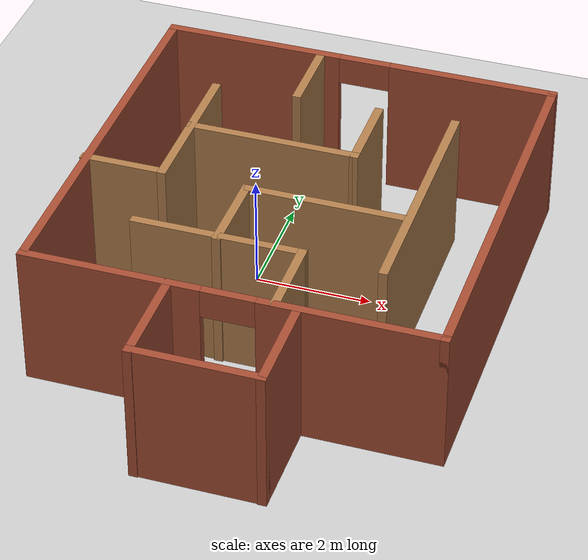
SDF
<?xml version="1.0"?>
<sdf version="1.7">
  <world name="default">
    <!-- 최소 환경 -->
    <include><uri>model://sun</uri></include>
    <include><uri>model://ground_plane</uri></include>

    <gravity>0 0 -9.8</gravity>
    <physics type="ode">
      <max_step_size>0.001</max_step_size>
      <real_time_update_rate>1000</real_time_update_rate>
      <real_time_factor>1</real_time_factor>
    </physics>

    <!-- === 미로(벽만 유지) === -->
    <model name="maze">
      <pose>0.743923 -0.894776 0 0 0 0</pose>
      <static>1</static>

      <link name="Wall_0">
        <pose>-3.40979 0.847721 0 0 0 -1.5708</pose>
        <collision name="Wall_0_Collision">
          <pose>0 0 1.25 0 0 0</pose>
          <geometry><box><size>7 0.15 2.5</size></box></geometry>
        </collision>
        <visual name="Wall_0_Visual">
          <pose>0 0 1.25 0 0 0</pose>
          <geometry><box><size>7 0.15 2.5</size></box></geometry>
          <material><script>
            <uri>file://media/materials/scripts/gazebo.material</uri>
            <name>Gazebo/Bricks</name>
          </script></material>
        </visual>
      </link>

      <link name="Wall_1">
        <pose>0.015208 -2.57728 0 0 0 0</pose>
        <visual name="Wall_1_Visual_0">
          <pose>-1.98478 0 1.25 0 0 0</pose>
          <geometry><box><size>3.03043 0.15 2.5</size></box></geometry>
          <material><script><uri>file://media/materials/scripts/gazebo.material</uri><name>Gazebo/Bricks</name></script></material>
        </visual>
        <collision name="Wall_1_Collision_0">
          <pose>-1.98478 0 1.25 0 0 0</pose>
          <geometry><box><size>3.03043 0.15 2.5</size></box></geometry>
        </collision>
        <visual name="Wall_1_Visual_1">
          <pose>1.96522 0 1.25 0 0 0</pose>
          <geometry><box><size>3.06957 0.15 2.5</size></box></geometry>
          <material><script><uri>file://media/materials/scripts/gazebo.material</uri><name>Gazebo/Bricks</name></script></material>
        </visual>
        <collision name="Wall_1_Collision_1">
          <pose>1.96522 0 1.25 0 0 0</pose>
          <geometry><box><size>3.06957 0.15 2.5</size></box></geometry>
        </collision>
        <visual name="Wall_1_Visual_2">
          <pose>-0.019566 0 2.25 0 0 0</pose>
          <geometry><box><size>0.9 0.15 0.5</size></box></geometry>
          <material><script><uri>file://media/materials/scripts/gazebo.material</uri><name>Gazebo/Bricks</name></script></material>
        </visual>
        <collision name="Wall_1_Collision_2">
          <pose>-0.019566 0 2.25 0 0 0</pose>
          <geometry><box><size>0.9 0.15 0.5</size></box></geometry>
        </collision>
      </link>

      <link name="Wall_12">
        <pose>-0.676421 3.58967 0 0 0 -1.5708</pose>
        <collision name="Wall_12_Collision">
          <pose>0 0 1.25 0 0 0</pose>
          <geometry><box><size>1.5 0.15 2.5</size></box></geometry>
        </collision>
        <visual name="Wall_12_Visual">
          <pose>0 0 1.25 0 0 0</pose>
          <geometry><box><size>1.5 0.15 2.5</size></box></geometry>
          <material><script><uri>file://media/materials/scripts/gazebo.material</uri><name>Gazebo/Wood</name></script></material>
        </visual>
      </link>

      <link name="Wall_14">
        <pose>0.740274 -1.89894 0 0 0 1.5708</pose>
        <collision name="Wall_14_Collision">
          <pose>0 0 1.25 0 0 0</pose>
          <geometry><box><size>1.5 0.15 2.5</size></box></geometry>
        </collision>
        <visual name="Wall_14_Visual">
          <pose>0 0 1.25 0 0 0</pose>
          <geometry><box><size>1.5 0.15 2.5</size></box></geometry>
          <material><script><uri>file://media/materials/scripts/gazebo.material</uri><name>Gazebo/Wood</name></script></material>
        </visual>
      </link>

      <link name="Wall_15">
        <pose>-0.650186 -1.22557 0 0 0 -3.14042</pose>
        <collision name="Wall_15_Collision">
          <pose>0 0 1.25 0 0 0</pose>
          <geometry><box><size>2.93092 0.15 2.5</size></box></geometry>
        </collision>
        <visual name="Wall_15_Visual">
          <pose>0 0 1.25 0 0 0</pose>
          <geometry><box><size>2.93092 0.15 2.5</size></box></geometry>
          <material><script><uri>file://media/materials/scripts/gazebo.material</uri><name>Gazebo/Wood</name></script></material>
        </visual>
      </link>

      <link name="Wall_17">
        <pose>-0.64577 -0.569597 0 0 0 1.56118</pose>
        <collision name="Wall_17_Collision">
          <pose>0 0 1.25 0 0 0</pose>
          <geometry><box><size>1.52546 0.15 2.5</size></box></geometry>
        </collision>
        <visual name="Wall_17_Visual">
          <pose>0 0 1.25 0 0 0</pose>
          <geometry><box><size>1.52546 0.15 2.5</size></box></geometry>
          <material><script><uri>file://media/materials/scripts/gazebo.material</uri><name>Gazebo/Wood</name></script></material>
        </visual>
      </link>

      <link name="Wall_18">
        <pose>0.723017 0.118103 0 0 0 0</pose>
        <collision name="Wall_18_Collision">
          <pose>0 0 1.25 0 0 0</pose>
          <geometry><box><size>2.87435 0.15 2.5</size></box></geometry>
        </collision>
        <visual name="Wall_18_Visual">
          <pose>0 0 1.25 0 0 0</pose>
          <geometry><box><size>2.87435 0.15 2.5</size></box></geometry>
          <material><script><uri>file://media/materials/scripts/gazebo.material</uri><name>Gazebo/Wood</name></script></material>
        </visual>
      </link>

      <link name="Wall_2">
        <pose>3.44021 0.847721 0 0 0 1.5708</pose>
        <collision name="Wall_2_Collision">
          <pose>0 0 1.25 0 0 0</pose>
          <geometry><box><size>7 0.15 2.5</size></box></geometry>
        </collision>
        <visual name="Wall_2_Visual">
          <pose>0 0 1.25 0 0 0</pose>
          <geometry><box><size>7 0.15 2.5</size></box></geometry>
          <material><script><uri>file://media/materials/scripts/gazebo.material</uri><name>Gazebo/Bricks</name></script></material>
        </visual>
      </link>

      <link name="Wall_20">
        <pose>2.0918 0.812416 0 0 0 -1.56766</pose>
        <collision name="Wall_20_Collision">
          <pose>0 0 1.25 0 0 0</pose>
          <geometry><box><size>4.3688 0.15 2.5</size></box></geometry>
        </collision>
        <visual name="Wall_20_Visual">
          <pose>0 0 1.25 0 0 0</pose>
          <geometry><box><size>4.3688 0.15 2.5</size></box></geometry>
          <material><script><uri>file://media/materials/scripts/gazebo.material</uri><name>Gazebo/Wood</name></script></material>
        </visual>
      </link>

      <link name="Wall_22">
        <pose>-0.988717 -3.43376 0 0 0 -1.5708</pose>
        <collision name="Wall_22_Collision">
          <pose>0 0 1.25 0 0 0</pose>
          <geometry><box><size>1.82793 0.15 2.5</size></box></geometry>
        </collision>
        <visual name="Wall_22_Visual">
          <pose>0 0 1.25 0 0 0</pose>
          <geometry><box><size>1.82793 0.15 2.5</size></box></geometry>
          <material><script><uri>file://media/materials/scripts/gazebo.material</uri><name>Gazebo/Bricks</name></script></material>
        </visual>
      </link>

      <link name="Wall_23">
        <pose>0.061283 -4.25751 0 0 0 0</pose>
        <collision name="Wall_23_Collision">
          <pose>0 0 1.25 0 0 0</pose>
          <geometry><box><size>2.25 0.15 2.5</size></box></geometry>
        </collision>
        <visual name="Wall_23_Visual">
          <pose>0 0 1.25 0 0 0</pose>
          <geometry><box><size>2.25 0.15 2.5</size></box></geometry>
          <material><script><uri>file://media/materials/scripts/gazebo.material</uri><name>Gazebo/Bricks</name></script></material>
        </visual>
      </link>

      <link name="Wall_24">
        <pose>1.11128 -3.43376 0 0 0 1.5708</pose>
        <collision name="Wall_24_Collision">
          <pose>0 0 1.25 0 0 0</pose>
          <geometry><box><size>1.82793 0.15 2.5</size></box></geometry>
        </collision>
        <visual name="Wall_24_Visual">
          <pose>0 0 1.25 0 0 0</pose>
          <geometry><box><size>1.82793 0.15 2.5</size></box></geometry>
          <material><script><uri>file://media/materials/scripts/gazebo.material</uri><name>Gazebo/Bricks</name></script></material>
        </visual>
      </link>

      <link name="Wall_3">
        <pose>0.015208 4.27272 0 0 0 3.14159</pose>
        <visual name="Wall_3_Visual_0">
          <pose>-2.02473 0 1.25 0 0 0</pose>
          <geometry><box><size>2.95054 0.15 2.5</size></box></geometry>
          <material><script><uri>file://media/materials/scripts/gazebo.material</uri><name>Gazebo/Bricks</name></script></material>
        </visual>
        <collision name="Wall_3_Collision_0">
          <pose>-2.02473 0 1.25 0 0 0</pose>
          <geometry><box><size>2.95054 0.15 2.5</size></box></geometry>
        </collision>
        <visual name="Wall_3_Visual_1">
          <pose>1.92527 0 1.25 0 0 0</pose>
          <geometry><box><size>3.14946 0.15 2.5</size></box></geometry>
          <material><script><uri>file://media/materials/scripts/gazebo.material</uri><name>Gazebo/Bricks</name></script></material>
        </visual>
        <collision name="Wall_3_Collision_1">
          <pose>1.92527 0 1.25 0 0 0</pose>
          <geometry><box><size>3.14946 0.15 2.5</size></box></geometry>
        </collision>
        <visual name="Wall_3_Visual_2">
          <pose>-0.099459 0 2.25 0 0 0</pose>
          <geometry><box><size>0.9 0.15 0.5</size></box></geometry>
          <material><script><uri>file://media/materials/scripts/gazebo.material</uri><name>Gazebo/Bricks</name></script></material>
        </visual>
        <collision name="Wall_3_Collision_2">
          <pose>-0.099459 0 2.25 0 0 0</pose>
          <geometry><box><size>0.9 0.15 0.5</size></box></geometry>
        </collision>
      </link>

      <link name="Wall_5">
        <pose>-2.76521 0.135941 0 0 0 0</pose>
        <collision name="Wall_5_Collision">
          <pose>0 0 1.25 0 0 0</pose>
          <geometry><box><size>1.5 0.15 2.5</size></box></geometry>
        </collision>
        <visual name="Wall_5_Visual">
          <pose>0 0 1.25 0 0 0</pose>
          <geometry><box><size>1.5 0.15 2.5</size></box></geometry>
          <material><script><uri>file://media/materials/scripts/gazebo.material</uri><name>Gazebo/Wood</name></script></material>
        </visual>
      </link>

      <link name="Wall_6">
        <pose>-2.09021 1.43594 0 0 0 1.5708</pose>
        <collision name="Wall_6_Collision">
          <pose>0 0 1.25 0 0 0</pose>
          <geometry><box><size>2.75 0.15 2.5</size></box></geometry>
        </collision>
        <visual name="Wall_6_Visual">
          <pose>0 0 1.25 0 0 0</pose>
          <geometry><box><size>2.75 0.15 2.5</size></box></geometry>
          <material><script><uri>file://media/materials/scripts/gazebo.material</uri><name>Gazebo/Wood</name></script></material>
        </visual>
      </link>

      <link name="Wall_8">
        <pose>-0.66163 1.51994 0 0 0 0</pose>
        <collision name="Wall_8_Collision">
          <pose>0 0 1.25 0 0 0</pose>
          <geometry><box><size>3 0.15 2.5</size></box></geometry>
        </collision>
        <visual name="Wall_8_Visual">
          <pose>0 0 1.25 0 0 0</pose>
          <geometry><box><size>3 0.15 2.5</size></box></geometry>
          <material><script><uri>file://media/materials/scripts/gazebo.material</uri><name>Gazebo/Wood</name></script></material>
        </visual>
      </link>

      <link name="Wall_9">
        <pose>0.76337 2.19494 0 0 0 1.5708</pose>
        <collision name="Wall_9_Collision">
          <pose>0 0 1.25 0 0 0</pose>
          <geometry><box><size>1.5 0.15 2.5</size></box></geometry>
        </collision>
        <visual name="Wall_9_Visual">
          <pose>0 0 1.25 0 0 0</pose>
          <geometry><box><size>1.5 0.15 2.5</size></box></geometry>
          <material><script><uri>file://media/materials/scripts/gazebo.material</uri><name>Gazebo/Wood</name></script></material>
        </visual>
      </link>

    </model>
  </world>
</sdf>
